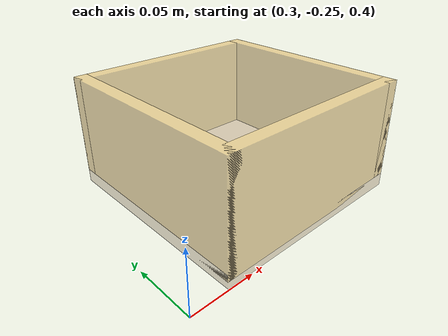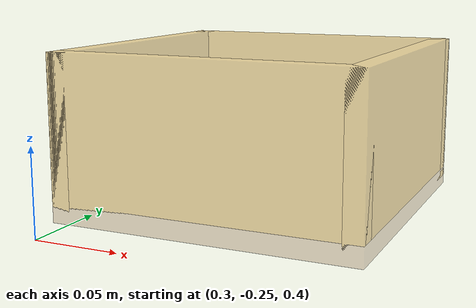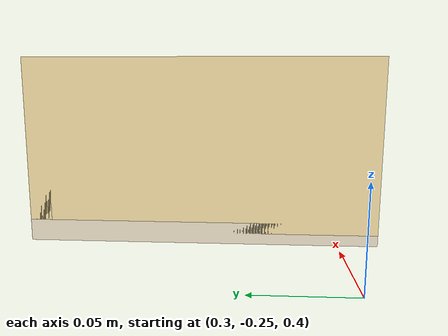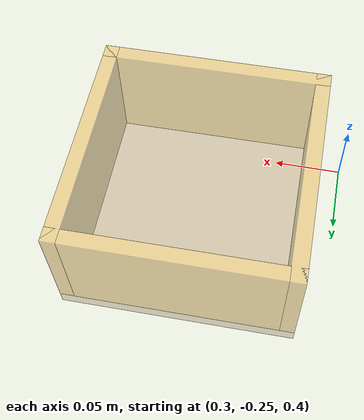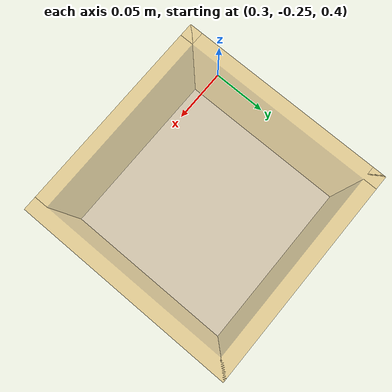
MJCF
<mujoco>
  <worldbody>
    <!-- Target bin (collection area) - LEFT of robot (matches training) -->
    <body name="bin" pos="0.4 -0.18 0.42">
      <!-- Bin walls (4 sides) - Yellow/cardboard color to match training -->
      <!-- All walls have collision enabled with proper friction -->
      <geom name="bin_bottom" type="box" size="0.08 0.08 0.005" rgba="0.6 0.4 0.2 0.3" mass="0.1"
            friction="1.0 0.005 0.0001" condim="4" contype="1" conaffinity="1"
            solimp="0.99 0.99 0.001" solref="0.01 1"/>
      <geom name="bin_wall_x1" type="box" size="0.005 0.08 0.04" pos="0.075 0 0.04" rgba="0.9 0.7 0.3 0.5" mass="0.05"
            friction="0.5 0.005 0.0001" condim="4" contype="1" conaffinity="1"
            solimp="0.99 0.99 0.001" solref="0.01 1"/>
      <geom name="bin_wall_x2" type="box" size="0.005 0.08 0.04" pos="-0.075 0 0.04" rgba="0.9 0.7 0.3 0.5" mass="0.05"
            friction="0.5 0.005 0.0001" condim="4" contype="1" conaffinity="1"
            solimp="0.99 0.99 0.001" solref="0.01 1"/>
      <geom name="bin_wall_y1" type="box" size="0.08 0.005 0.04" pos="0 0.075 0.04" rgba="0.9 0.7 0.3 0.5" mass="0.05"
            friction="0.5 0.005 0.0001" condim="4" contype="1" conaffinity="1"
            solimp="0.99 0.99 0.001" solref="0.01 1"/>
      <geom name="bin_wall_y2" type="box" size="0.08 0.005 0.04" pos="0 -0.075 0.04" rgba="0.9 0.7 0.3 0.5" mass="0.05"
            friction="0.5 0.005 0.0001" condim="4" contype="1" conaffinity="1"
            solimp="0.99 0.99 0.001" solref="0.01 1"/>
    </body>
  </worldbody>
</mujoco>
